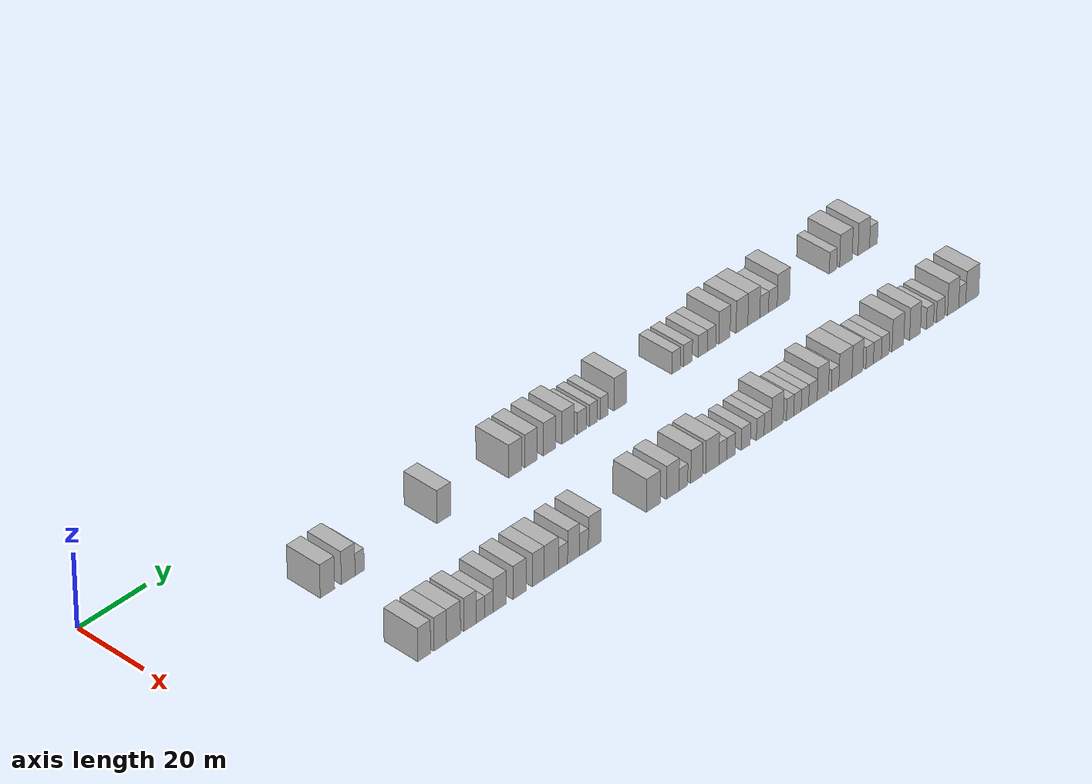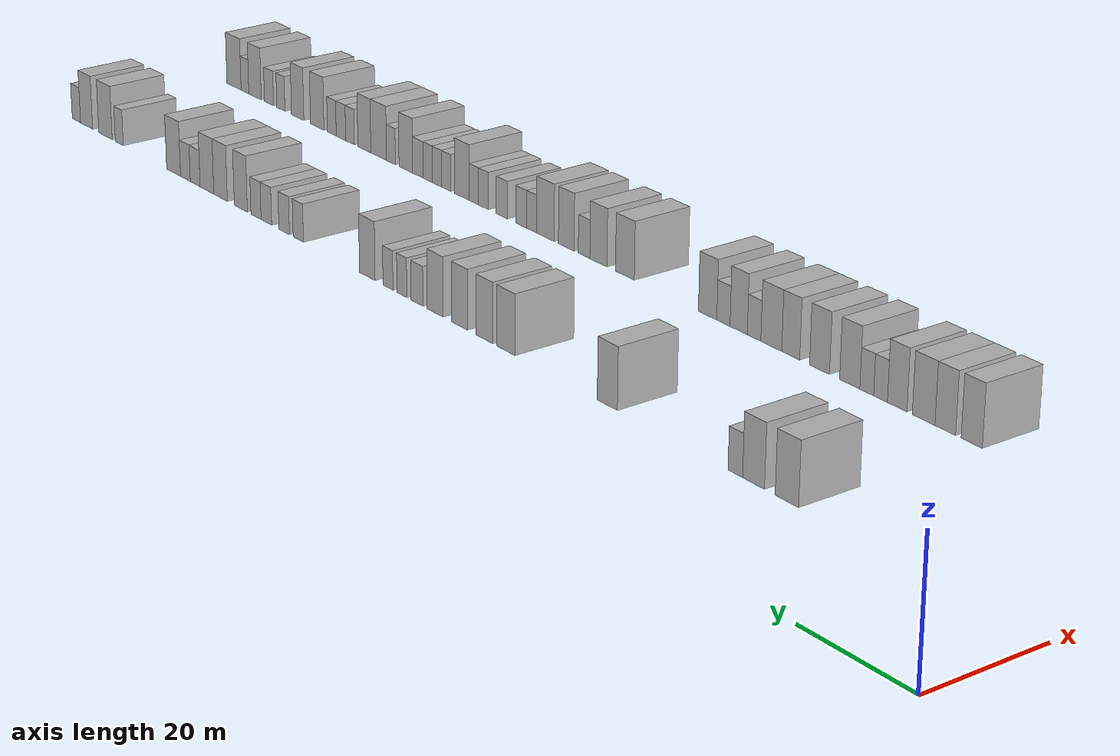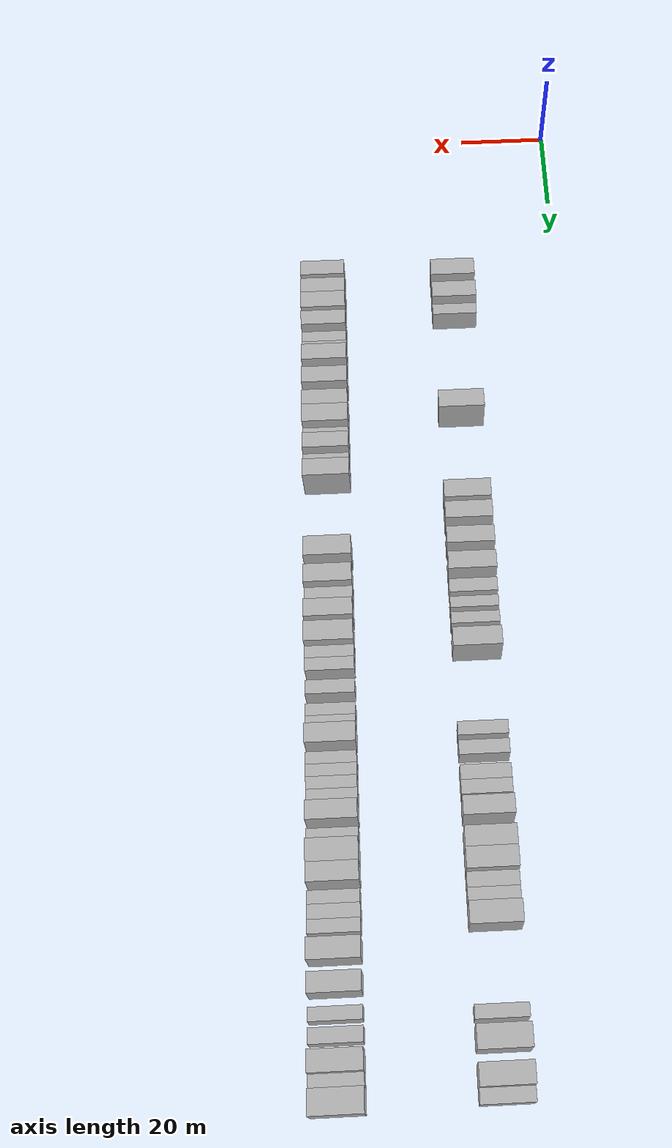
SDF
<sdf version="1.6">
 <world name="default">
  <model name="building_66">
   <static>1</static>
   <pose>25.0000 44.5543 0 0.000000 0.000000 0.000000</pose>
   <link name="link">
    <pose>0 0 4.50 0 0 0</pose>
    <collision name="collision"><geometry><box><size>10.0000 4.3334 9.0000</size></box></geometry></collision>
    <visual name="visual">
     <cast_shadows>0</cast_shadows>
     <geometry><box><size>10.0000 4.3334 9.0000</size></box></geometry>
     <material>
      <script>
       <uri>model://HANNAS_wall/materials/scripts</uri>
       <uri>model://HANNAS_wall/materials/textures</uri>
       <name>vrc/HANNAS_wall</name>
      </script>
     </material>
    </visual>
   </link>
  </model>
  <model name="building_67">
   <static>1</static>
   <pose>25.0000 50.7945 0 0.000000 0.000000 0.000000</pose>
   <link name="link">
    <pose>0 0 4.50 0 0 0</pose>
    <collision name="collision"><geometry><box><size>10.0000 4.1470 9.0000</size></box></geometry></collision>
    <visual name="visual">
     <cast_shadows>0</cast_shadows>
     <geometry><box><size>10.0000 4.1470 9.0000</size></box></geometry>
     <material>
      <script>
       <uri>model://HANNAS_wall/materials/scripts</uri>
       <uri>model://HANNAS_wall/materials/textures</uri>
       <name>vrc/HANNAS_wall</name>
      </script>
     </material>
    </visual>
   </link>
  </model>
  <model name="building_68">
   <static>1</static>
   <pose>25.0000 54.2632 0 0.000000 0.000000 0.000000</pose>
   <link name="link">
    <pose>0 0 3.00 0 0 0</pose>
    <collision name="collision"><geometry><box><size>10.0000 2.7905 6.0000</size></box></geometry></collision>
    <visual name="visual">
     <cast_shadows>0</cast_shadows>
     <geometry><box><size>10.0000 2.7905 6.0000</size></box></geometry>
     <material>
      <script>
       <uri>model://HANNAS_wall/materials/scripts</uri>
       <uri>model://HANNAS_wall/materials/textures</uri>
       <name>vrc/HANNAS_wall</name>
      </script>
     </material>
    </visual>
   </link>
  </model>
  <model name="building_69">
   <static>1</static>
   <pose>25.0000 80.0277 0 0.000000 0.000000 0.000000</pose>
   <link name="link">
    <pose>0 0 4.50 0 0 0</pose>
    <collision name="collision"><geometry><box><size>10.0000 4.2462 9.0000</size></box></geometry></collision>
    <visual name="visual">
     <cast_shadows>0</cast_shadows>
     <geometry><box><size>10.0000 4.2462 9.0000</size></box></geometry>
     <material>
      <script>
       <uri>model://HANNAS_wall/materials/scripts</uri>
       <uri>model://HANNAS_wall/materials/textures</uri>
       <name>vrc/HANNAS_wall</name>
      </script>
     </material>
    </visual>
   </link>
  </model>
  <model name="building_70">
   <static>1</static>
   <pose>25.0000 102.2904 0 0.000000 0.000000 0.000000</pose>
   <link name="link">
    <pose>0 0 4.50 0 0 0</pose>
    <collision name="collision"><geometry><box><size>10.0000 4.0931 9.0000</size></box></geometry></collision>
    <visual name="visual">
     <cast_shadows>0</cast_shadows>
     <geometry><box><size>10.0000 4.0931 9.0000</size></box></geometry>
     <material>
      <script>
       <uri>model://HANNAS_wall/materials/scripts</uri>
       <uri>model://HANNAS_wall/materials/textures</uri>
       <name>vrc/HANNAS_wall</name>
      </script>
     </material>
    </visual>
   </link>
  </model>
  <model name="building_71">
   <static>1</static>
   <pose>25.0000 107.2830 0 0.000000 0.000000 0.000000</pose>
   <link name="link">
    <pose>0 0 4.50 0 0 0</pose>
    <collision name="collision"><geometry><box><size>10.0000 3.8921 9.0000</size></box></geometry></collision>
    <visual name="visual">
     <cast_shadows>0</cast_shadows>
     <geometry><box><size>10.0000 3.8921 9.0000</size></box></geometry>
     <material>
      <script>
       <uri>model://HANNAS_wall/materials/scripts</uri>
       <uri>model://HANNAS_wall/materials/textures</uri>
       <name>vrc/HANNAS_wall</name>
      </script>
     </material>
    </visual>
   </link>
  </model>
  <model name="building_72">
   <static>1</static>
   <pose>25.0000 113.1129 0 0.000000 0.000000 0.000000</pose>
   <link name="link">
    <pose>0 0 4.50 0 0 0</pose>
    <collision name="collision"><geometry><box><size>10.0000 3.7676 9.0000</size></box></geometry></collision>
    <visual name="visual">
     <cast_shadows>0</cast_shadows>
     <geometry><box><size>10.0000 3.7676 9.0000</size></box></geometry>
     <material>
      <script>
       <uri>model://HANNAS_wall/materials/scripts</uri>
       <uri>model://HANNAS_wall/materials/textures</uri>
       <name>vrc/HANNAS_wall</name>
      </script>
     </material>
    </visual>
   </link>
  </model>
  <model name="building_73">
   <static>1</static>
   <pose>25.0000 118.9448 0 0.000000 0.000000 0.000000</pose>
   <link name="link">
    <pose>0 0 4.50 0 0 0</pose>
    <collision name="collision"><geometry><box><size>10.0000 3.8962 9.0000</size></box></geometry></collision>
    <visual name="visual">
     <cast_shadows>0</cast_shadows>
     <geometry><box><size>10.0000 3.8962 9.0000</size></box></geometry>
     <material>
      <script>
       <uri>model://HANNAS_wall/materials/scripts</uri>
       <uri>model://HANNAS_wall/materials/textures</uri>
       <name>vrc/HANNAS_wall</name>
      </script>
     </material>
    </visual>
   </link>
  </model>
  <model name="building_74">
   <static>1</static>
   <pose>25.0000 123.3768 0 0.000000 0.000000 0.000000</pose>
   <link name="link">
    <pose>0 0 3.00 0 0 0</pose>
    <collision name="collision"><geometry><box><size>10.0000 2.9678 6.0000</size></box></geometry></collision>
    <visual name="visual">
     <cast_shadows>0</cast_shadows>
     <geometry><box><size>10.0000 2.9678 6.0000</size></box></geometry>
     <material>
      <script>
       <uri>model://HANNAS_wall/materials/scripts</uri>
       <uri>model://HANNAS_wall/materials/textures</uri>
       <name>vrc/HANNAS_wall</name>
      </script>
     </material>
    </visual>
   </link>
  </model>
  <model name="building_75">
   <static>1</static>
   <pose>25.0000 127.0900 0 0.000000 0.000000 0.000000</pose>
   <link name="link">
    <pose>0 0 3.00 0 0 0</pose>
    <collision name="collision"><geometry><box><size>10.0000 2.4586 6.0000</size></box></geometry></collision>
    <visual name="visual">
     <cast_shadows>0</cast_shadows>
     <geometry><box><size>10.0000 2.4586 6.0000</size></box></geometry>
     <material>
      <script>
       <uri>model://HANNAS_wall/materials/scripts</uri>
       <uri>model://HANNAS_wall/materials/textures</uri>
       <name>vrc/HANNAS_wall</name>
      </script>
     </material>
    </visual>
   </link>
  </model>
  <model name="building_76">
   <static>1</static>
   <pose>25.0000 130.5722 0 0.000000 0.000000 0.000000</pose>
   <link name="link">
    <pose>0 0 3.00 0 0 0</pose>
    <collision name="collision"><geometry><box><size>10.0000 2.5057 6.0000</size></box></geometry></collision>
    <visual name="visual">
     <cast_shadows>0</cast_shadows>
     <geometry><box><size>10.0000 2.5057 6.0000</size></box></geometry>
     <material>
      <script>
       <uri>model://HANNAS_wall/materials/scripts</uri>
       <uri>model://HANNAS_wall/materials/textures</uri>
       <name>vrc/HANNAS_wall</name>
      </script>
     </material>
    </visual>
   </link>
  </model>
  <model name="building_77">
   <static>1</static>
   <pose>25.0000 135.8211 0 0.000000 0.000000 0.000000</pose>
   <link name="link">
    <pose>0 0 4.50 0 0 0</pose>
    <collision name="collision"><geometry><box><size>10.0000 3.9923 9.0000</size></box></geometry></collision>
    <visual name="visual">
     <cast_shadows>0</cast_shadows>
     <geometry><box><size>10.0000 3.9923 9.0000</size></box></geometry>
     <material>
      <script>
       <uri>model://HANNAS_wall/materials/scripts</uri>
       <uri>model://HANNAS_wall/materials/textures</uri>
       <name>vrc/HANNAS_wall</name>
      </script>
     </material>
    </visual>
   </link>
  </model>
  <model name="building_78">
   <static>1</static>
   <pose>25.0000 154.0141 0 0.000000 0.000000 0.000000</pose>
   <link name="link">
    <pose>0 0 3.00 0 0 0</pose>
    <collision name="collision"><geometry><box><size>10.0000 2.7978 6.0000</size></box></geometry></collision>
    <visual name="visual">
     <cast_shadows>0</cast_shadows>
     <geometry><box><size>10.0000 2.7978 6.0000</size></box></geometry>
     <material>
      <script>
       <uri>model://HANNAS_wall/materials/scripts</uri>
       <uri>model://HANNAS_wall/materials/textures</uri>
       <name>vrc/HANNAS_wall</name>
      </script>
     </material>
    </visual>
   </link>
  </model>
  <model name="building_79">
   <static>1</static>
   <pose>25.0000 157.8688 0 0.000000 0.000000 0.000000</pose>
   <link name="link">
    <pose>0 0 3.00 0 0 0</pose>
    <collision name="collision"><geometry><box><size>10.0000 2.9116 6.0000</size></box></geometry></collision>
    <visual name="visual">
     <cast_shadows>0</cast_shadows>
     <geometry><box><size>10.0000 2.9116 6.0000</size></box></geometry>
     <material>
      <script>
       <uri>model://HANNAS_wall/materials/scripts</uri>
       <uri>model://HANNAS_wall/materials/textures</uri>
       <name>vrc/HANNAS_wall</name>
      </script>
     </material>
    </visual>
   </link>
  </model>
  <model name="building_80">
   <static>1</static>
   <pose>25.0000 162.8022 0 0.000000 0.000000 0.000000</pose>
   <link name="link">
    <pose>0 0 3.00 0 0 0</pose>
    <collision name="collision"><geometry><box><size>10.0000 2.9551 6.0000</size></box></geometry></collision>
    <visual name="visual">
     <cast_shadows>0</cast_shadows>
     <geometry><box><size>10.0000 2.9551 6.0000</size></box></geometry>
     <material>
      <script>
       <uri>model://HANNAS_wall/materials/scripts</uri>
       <uri>model://HANNAS_wall/materials/textures</uri>
       <name>vrc/HANNAS_wall</name>
      </script>
     </material>
    </visual>
   </link>
  </model>
  <model name="building_81">
   <static>1</static>
   <pose>25.0000 165.7086 0 0.000000 0.000000 0.000000</pose>
   <link name="link">
    <pose>0 0 3.00 0 0 0</pose>
    <collision name="collision"><geometry><box><size>10.0000 2.8577 6.0000</size></box></geometry></collision>
    <visual name="visual">
     <cast_shadows>0</cast_shadows>
     <geometry><box><size>10.0000 2.8577 6.0000</size></box></geometry>
     <material>
      <script>
       <uri>model://HANNAS_wall/materials/scripts</uri>
       <uri>model://HANNAS_wall/materials/textures</uri>
       <name>vrc/HANNAS_wall</name>
      </script>
     </material>
    </visual>
   </link>
  </model>
  <model name="building_82">
   <static>1</static>
   <pose>25.0000 170.0005 0 0.000000 0.000000 0.000000</pose>
   <link name="link">
    <pose>0 0 4.50 0 0 0</pose>
    <collision name="collision"><geometry><box><size>10.0000 3.7261 9.0000</size></box></geometry></collision>
    <visual name="visual">
     <cast_shadows>0</cast_shadows>
     <geometry><box><size>10.0000 3.7261 9.0000</size></box></geometry>
     <material>
      <script>
       <uri>model://HANNAS_wall/materials/scripts</uri>
       <uri>model://HANNAS_wall/materials/textures</uri>
       <name>vrc/HANNAS_wall</name>
      </script>
     </material>
    </visual>
   </link>
  </model>
  <model name="building_83">
   <static>1</static>
   <pose>25.0000 175.8332 0 0.000000 0.000000 0.000000</pose>
   <link name="link">
    <pose>0 0 4.50 0 0 0</pose>
    <collision name="collision"><geometry><box><size>10.0000 3.9392 9.0000</size></box></geometry></collision>
    <visual name="visual">
     <cast_shadows>0</cast_shadows>
     <geometry><box><size>10.0000 3.9392 9.0000</size></box></geometry>
     <material>
      <script>
       <uri>model://HANNAS_wall/materials/scripts</uri>
       <uri>model://HANNAS_wall/materials/textures</uri>
       <name>vrc/HANNAS_wall</name>
      </script>
     </material>
    </visual>
   </link>
  </model>
  <model name="building_84">
   <static>1</static>
   <pose>25.0000 179.8271 0 0.000000 0.000000 0.000000</pose>
   <link name="link">
    <pose>0 0 4.50 0 0 0</pose>
    <collision name="collision"><geometry><box><size>10.0000 4.0485 9.0000</size></box></geometry></collision>
    <visual name="visual">
     <cast_shadows>0</cast_shadows>
     <geometry><box><size>10.0000 4.0485 9.0000</size></box></geometry>
     <material>
      <script>
       <uri>model://HANNAS_wall/materials/scripts</uri>
       <uri>model://HANNAS_wall/materials/textures</uri>
       <name>vrc/HANNAS_wall</name>
      </script>
     </material>
    </visual>
   </link>
  </model>
  <model name="building_85">
   <static>1</static>
   <pose>25.0000 183.3029 0 0.000000 0.000000 0.000000</pose>
   <link name="link">
    <pose>0 0 3.00 0 0 0</pose>
    <collision name="collision"><geometry><box><size>10.0000 2.9031 6.0000</size></box></geometry></collision>
    <visual name="visual">
     <cast_shadows>0</cast_shadows>
     <geometry><box><size>10.0000 2.9031 6.0000</size></box></geometry>
     <material>
      <script>
       <uri>model://HANNAS_wall/materials/scripts</uri>
       <uri>model://HANNAS_wall/materials/textures</uri>
       <name>vrc/HANNAS_wall</name>
      </script>
     </material>
    </visual>
   </link>
  </model>
  <model name="building_86">
   <static>1</static>
   <pose>25.0000 186.2174 0 0.000000 0.000000 0.000000</pose>
   <link name="link">
    <pose>0 0 3.00 0 0 0</pose>
    <collision name="collision"><geometry><box><size>10.0000 2.9258 6.0000</size></box></geometry></collision>
    <visual name="visual">
     <cast_shadows>0</cast_shadows>
     <geometry><box><size>10.0000 2.9258 6.0000</size></box></geometry>
     <material>
      <script>
       <uri>model://HANNAS_wall/materials/scripts</uri>
       <uri>model://HANNAS_wall/materials/textures</uri>
       <name>vrc/HANNAS_wall</name>
      </script>
     </material>
    </visual>
   </link>
  </model>
  <model name="building_87">
   <static>1</static>
   <pose>25.0000 189.7838 0 0.000000 0.000000 0.000000</pose>
   <link name="link">
    <pose>0 0 4.50 0 0 0</pose>
    <collision name="collision"><geometry><box><size>10.0000 4.2070 9.0000</size></box></geometry></collision>
    <visual name="visual">
     <cast_shadows>0</cast_shadows>
     <geometry><box><size>10.0000 4.2070 9.0000</size></box></geometry>
     <material>
      <script>
       <uri>model://HANNAS_wall/materials/scripts</uri>
       <uri>model://HANNAS_wall/materials/textures</uri>
       <name>vrc/HANNAS_wall</name>
      </script>
     </material>
    </visual>
   </link>
  </model>
  <model name="building_88">
   <static>1</static>
   <pose>25.0000 206.6838 0 0.000000 0.000000 0.000000</pose>
   <link name="link">
    <pose>0 0 3.00 0 0 0</pose>
    <collision name="collision"><geometry><box><size>10.0000 2.5310 6.0000</size></box></geometry></collision>
    <visual name="visual">
     <cast_shadows>0</cast_shadows>
     <geometry><box><size>10.0000 2.5310 6.0000</size></box></geometry>
     <material>
      <script>
       <uri>model://HANNAS_wall/materials/scripts</uri>
       <uri>model://HANNAS_wall/materials/textures</uri>
       <name>vrc/HANNAS_wall</name>
      </script>
     </material>
    </visual>
   </link>
  </model>
  <model name="building_89">
   <static>1</static>
   <pose>25.0000 211.1106 0 0.000000 0.000000 0.000000</pose>
   <link name="link">
    <pose>0 0 4.50 0 0 0</pose>
    <collision name="collision"><geometry><box><size>10.0000 4.3227 9.0000</size></box></geometry></collision>
    <visual name="visual">
     <cast_shadows>0</cast_shadows>
     <geometry><box><size>10.0000 4.3227 9.0000</size></box></geometry>
     <material>
      <script>
       <uri>model://HANNAS_wall/materials/scripts</uri>
       <uri>model://HANNAS_wall/materials/textures</uri>
       <name>vrc/HANNAS_wall</name>
      </script>
     </material>
    </visual>
   </link>
  </model>
  <model name="building_90">
   <static>1</static>
   <pose>25.0000 217.2692 0 0.000000 0.000000 0.000000</pose>
   <link name="link">
    <pose>0 0 4.50 0 0 0</pose>
    <collision name="collision"><geometry><box><size>10.0000 3.9945 9.0000</size></box></geometry></collision>
    <visual name="visual">
     <cast_shadows>0</cast_shadows>
     <geometry><box><size>10.0000 3.9945 9.0000</size></box></geometry>
     <material>
      <script>
       <uri>model://HANNAS_wall/materials/scripts</uri>
       <uri>model://HANNAS_wall/materials/textures</uri>
       <name>vrc/HANNAS_wall</name>
      </script>
     </material>
    </visual>
   </link>
  </model>
  <model name="building_91">
   <static>1</static>
   <pose>25.0000 220.6324 0 0.000000 0.000000 0.000000</pose>
   <link name="link">
    <pose>0 0 3.00 0 0 0</pose>
    <collision name="collision"><geometry><box><size>10.0000 2.7318 6.0000</size></box></geometry></collision>
    <visual name="visual">
     <cast_shadows>0</cast_shadows>
     <geometry><box><size>10.0000 2.7318 6.0000</size></box></geometry>
     <material>
      <script>
       <uri>model://HANNAS_wall/materials/scripts</uri>
       <uri>model://HANNAS_wall/materials/textures</uri>
       <name>vrc/HANNAS_wall</name>
      </script>
     </material>
    </visual>
   </link>
  </model>
  <model name="building_163">
   <static>1</static>
   <pose>55.0000 43.4551 0 0.000000 0.000000 0.000000</pose>
   <link name="link">
    <pose>0 0 4.50 0 0 0</pose>
    <collision name="collision"><geometry><box><size>10.0000 3.8297 9.0000</size></box></geometry></collision>
    <visual name="visual">
     <cast_shadows>0</cast_shadows>
     <geometry><box><size>10.0000 3.8297 9.0000</size></box></geometry>
     <material>
      <script>
       <uri>model://HANNAS_wall/materials/scripts</uri>
       <uri>model://HANNAS_wall/materials/textures</uri>
       <name>vrc/HANNAS_wall</name>
      </script>
     </material>
    </visual>
   </link>
  </model>
  <model name="building_164">
   <static>1</static>
   <pose>55.0000 48.2676 0 0.000000 0.000000 0.000000</pose>
   <link name="link">
    <pose>0 0 4.50 0 0 0</pose>
    <collision name="collision"><geometry><box><size>10.0000 3.7953 9.0000</size></box></geometry></collision>
    <visual name="visual">
     <cast_shadows>0</cast_shadows>
     <geometry><box><size>10.0000 3.7953 9.0000</size></box></geometry>
     <material>
      <script>
       <uri>model://HANNAS_wall/materials/scripts</uri>
       <uri>model://HANNAS_wall/materials/textures</uri>
       <name>vrc/HANNAS_wall</name>
      </script>
     </material>
    </visual>
   </link>
  </model>
  <model name="building_165">
   <static>1</static>
   <pose>55.0000 52.2779 0 0.000000 0.000000 0.000000</pose>
   <link name="link">
    <pose>0 0 4.50 0 0 0</pose>
    <collision name="collision"><geometry><box><size>10.0000 4.2254 9.0000</size></box></geometry></collision>
    <visual name="visual">
     <cast_shadows>0</cast_shadows>
     <geometry><box><size>10.0000 4.2254 9.0000</size></box></geometry>
     <material>
      <script>
       <uri>model://HANNAS_wall/materials/scripts</uri>
       <uri>model://HANNAS_wall/materials/textures</uri>
       <name>vrc/HANNAS_wall</name>
      </script>
     </material>
    </visual>
   </link>
  </model>
  <model name="building_166">
   <static>1</static>
   <pose>55.0000 57.2483 0 0.000000 0.000000 0.000000</pose>
   <link name="link">
    <pose>0 0 4.50 0 0 0</pose>
    <collision name="collision"><geometry><box><size>10.0000 3.7154 9.0000</size></box></geometry></collision>
    <visual name="visual">
     <cast_shadows>0</cast_shadows>
     <geometry><box><size>10.0000 3.7154 9.0000</size></box></geometry>
     <material>
      <script>
       <uri>model://HANNAS_wall/materials/scripts</uri>
       <uri>model://HANNAS_wall/materials/textures</uri>
       <name>vrc/HANNAS_wall</name>
      </script>
     </material>
    </visual>
   </link>
  </model>
  <model name="building_167">
   <static>1</static>
   <pose>55.0000 60.4273 0 0.000000 0.000000 0.000000</pose>
   <link name="link">
    <pose>0 0 3.00 0 0 0</pose>
    <collision name="collision"><geometry><box><size>10.0000 2.6425 6.0000</size></box></geometry></collision>
    <visual name="visual">
     <cast_shadows>0</cast_shadows>
     <geometry><box><size>10.0000 2.6425 6.0000</size></box></geometry>
     <material>
      <script>
       <uri>model://HANNAS_wall/materials/scripts</uri>
       <uri>model://HANNAS_wall/materials/textures</uri>
       <name>vrc/HANNAS_wall</name>
      </script>
     </material>
    </visual>
   </link>
  </model>
  <model name="building_168">
   <static>1</static>
   <pose>55.0000 63.0873 0 0.000000 0.000000 0.000000</pose>
   <link name="link">
    <pose>0 0 3.00 0 0 0</pose>
    <collision name="collision"><geometry><box><size>10.0000 2.6775 6.0000</size></box></geometry></collision>
    <visual name="visual">
     <cast_shadows>0</cast_shadows>
     <geometry><box><size>10.0000 2.6775 6.0000</size></box></geometry>
     <material>
      <script>
       <uri>model://HANNAS_wall/materials/scripts</uri>
       <uri>model://HANNAS_wall/materials/textures</uri>
       <name>vrc/HANNAS_wall</name>
      </script>
     </material>
    </visual>
   </link>
  </model>
  <model name="building_169">
   <static>1</static>
   <pose>55.0000 66.4097 0 0.000000 0.000000 0.000000</pose>
   <link name="link">
    <pose>0 0 4.50 0 0 0</pose>
    <collision name="collision"><geometry><box><size>10.0000 3.9674 9.0000</size></box></geometry></collision>
    <visual name="visual">
     <cast_shadows>0</cast_shadows>
     <geometry><box><size>10.0000 3.9674 9.0000</size></box></geometry>
     <material>
      <script>
       <uri>model://HANNAS_wall/materials/scripts</uri>
       <uri>model://HANNAS_wall/materials/textures</uri>
       <name>vrc/HANNAS_wall</name>
      </script>
     </material>
    </visual>
   </link>
  </model>
  <model name="building_170">
   <static>1</static>
   <pose>55.0000 72.3916 0 0.000000 0.000000 0.000000</pose>
   <link name="link">
    <pose>0 0 4.50 0 0 0</pose>
    <collision name="collision"><geometry><box><size>10.0000 3.9963 9.0000</size></box></geometry></collision>
    <visual name="visual">
     <cast_shadows>0</cast_shadows>
     <geometry><box><size>10.0000 3.9963 9.0000</size></box></geometry>
     <material>
      <script>
       <uri>model://HANNAS_wall/materials/scripts</uri>
       <uri>model://HANNAS_wall/materials/textures</uri>
       <name>vrc/HANNAS_wall</name>
      </script>
     </material>
    </visual>
   </link>
  </model>
  <model name="building_171">
   <static>1</static>
   <pose>55.0000 78.2296 0 0.000000 0.000000 0.000000</pose>
   <link name="link">
    <pose>0 0 4.50 0 0 0</pose>
    <collision name="collision"><geometry><box><size>10.0000 3.6797 9.0000</size></box></geometry></collision>
    <visual name="visual">
     <cast_shadows>0</cast_shadows>
     <geometry><box><size>10.0000 3.6797 9.0000</size></box></geometry>
     <material>
      <script>
       <uri>model://HANNAS_wall/materials/scripts</uri>
       <uri>model://HANNAS_wall/materials/textures</uri>
       <name>vrc/HANNAS_wall</name>
      </script>
     </material>
    </visual>
   </link>
  </model>
  <model name="building_172">
   <static>1</static>
   <pose>55.0000 82.2368 0 0.000000 0.000000 0.000000</pose>
   <link name="link">
    <pose>0 0 4.50 0 0 0</pose>
    <collision name="collision"><geometry><box><size>10.0000 4.3348 9.0000</size></box></geometry></collision>
    <visual name="visual">
     <cast_shadows>0</cast_shadows>
     <geometry><box><size>10.0000 4.3348 9.0000</size></box></geometry>
     <material>
      <script>
       <uri>model://HANNAS_wall/materials/scripts</uri>
       <uri>model://HANNAS_wall/materials/textures</uri>
       <name>vrc/HANNAS_wall</name>
      </script>
     </material>
    </visual>
   </link>
  </model>
  <model name="building_173">
   <static>1</static>
   <pose>55.0000 85.8273 0 0.000000 0.000000 0.000000</pose>
   <link name="link">
    <pose>0 0 3.00 0 0 0</pose>
    <collision name="collision"><geometry><box><size>10.0000 2.8461 6.0000</size></box></geometry></collision>
    <visual name="visual">
     <cast_shadows>0</cast_shadows>
     <geometry><box><size>10.0000 2.8461 6.0000</size></box></geometry>
     <material>
      <script>
       <uri>model://HANNAS_wall/materials/scripts</uri>
       <uri>model://HANNAS_wall/materials/textures</uri>
       <name>vrc/HANNAS_wall</name>
      </script>
     </material>
    </visual>
   </link>
  </model>
  <model name="building_174">
   <static>1</static>
   <pose>55.0000 89.0780 0 0.000000 0.000000 0.000000</pose>
   <link name="link">
    <pose>0 0 4.50 0 0 0</pose>
    <collision name="collision"><geometry><box><size>10.0000 3.6553 9.0000</size></box></geometry></collision>
    <visual name="visual">
     <cast_shadows>0</cast_shadows>
     <geometry><box><size>10.0000 3.6553 9.0000</size></box></geometry>
     <material>
      <script>
       <uri>model://HANNAS_wall/materials/scripts</uri>
       <uri>model://HANNAS_wall/materials/textures</uri>
       <name>vrc/HANNAS_wall</name>
      </script>
     </material>
    </visual>
   </link>
  </model>
  <model name="building_175">
   <static>1</static>
   <pose>55.0000 92.3226 0 0.000000 0.000000 0.000000</pose>
   <link name="link">
    <pose>0 0 3.00 0 0 0</pose>
    <collision name="collision"><geometry><box><size>10.0000 2.8340 6.0000</size></box></geometry></collision>
    <visual name="visual">
     <cast_shadows>0</cast_shadows>
     <geometry><box><size>10.0000 2.8340 6.0000</size></box></geometry>
     <material>
      <script>
       <uri>model://HANNAS_wall/materials/scripts</uri>
       <uri>model://HANNAS_wall/materials/textures</uri>
       <name>vrc/HANNAS_wall</name>
      </script>
     </material>
    </visual>
   </link>
  </model>
  <model name="building_176">
   <static>1</static>
   <pose>55.0000 95.7386 0 0.000000 0.000000 0.000000</pose>
   <link name="link">
    <pose>0 0 4.50 0 0 0</pose>
    <collision name="collision"><geometry><box><size>10.0000 3.9980 9.0000</size></box></geometry></collision>
    <visual name="visual">
     <cast_shadows>0</cast_shadows>
     <geometry><box><size>10.0000 3.9980 9.0000</size></box></geometry>
     <material>
      <script>
       <uri>model://HANNAS_wall/materials/scripts</uri>
       <uri>model://HANNAS_wall/materials/textures</uri>
       <name>vrc/HANNAS_wall</name>
      </script>
     </material>
    </visual>
   </link>
  </model>
  <model name="building_177">
   <static>1</static>
   <pose>55.0000 114.2738 0 0.000000 0.000000 0.000000</pose>
   <link name="link">
    <pose>0 0 4.50 0 0 0</pose>
    <collision name="collision"><geometry><box><size>10.0000 4.3575 9.0000</size></box></geometry></collision>
    <visual name="visual">
     <cast_shadows>0</cast_shadows>
     <geometry><box><size>10.0000 4.3575 9.0000</size></box></geometry>
     <material>
      <script>
       <uri>model://HANNAS_wall/materials/scripts</uri>
       <uri>model://HANNAS_wall/materials/textures</uri>
       <name>vrc/HANNAS_wall</name>
      </script>
     </material>
    </visual>
   </link>
  </model>
  <model name="building_178">
   <static>1</static>
   <pose>55.0000 120.4576 0 0.000000 0.000000 0.000000</pose>
   <link name="link">
    <pose>0 0 4.50 0 0 0</pose>
    <collision name="collision"><geometry><box><size>10.0000 4.0099 9.0000</size></box></geometry></collision>
    <visual name="visual">
     <cast_shadows>0</cast_shadows>
     <geometry><box><size>10.0000 4.0099 9.0000</size></box></geometry>
     <material>
      <script>
       <uri>model://HANNAS_wall/materials/scripts</uri>
       <uri>model://HANNAS_wall/materials/textures</uri>
       <name>vrc/HANNAS_wall</name>
      </script>
     </material>
    </visual>
   </link>
  </model>
  <model name="building_179">
   <static>1</static>
   <pose>55.0000 123.8497 0 0.000000 0.000000 0.000000</pose>
   <link name="link">
    <pose>0 0 3.00 0 0 0</pose>
    <collision name="collision"><geometry><box><size>10.0000 2.7743 6.0000</size></box></geometry></collision>
    <visual name="visual">
     <cast_shadows>0</cast_shadows>
     <geometry><box><size>10.0000 2.7743 6.0000</size></box></geometry>
     <material>
      <script>
       <uri>model://HANNAS_wall/materials/scripts</uri>
       <uri>model://HANNAS_wall/materials/textures</uri>
       <name>vrc/HANNAS_wall</name>
      </script>
     </material>
    </visual>
   </link>
  </model>
  <model name="building_180">
   <static>1</static>
   <pose>55.0000 128.1355 0 0.000000 0.000000 0.000000</pose>
   <link name="link">
    <pose>0 0 4.50 0 0 0</pose>
    <collision name="collision"><geometry><box><size>10.0000 3.7974 9.0000</size></box></geometry></collision>
    <visual name="visual">
     <cast_shadows>0</cast_shadows>
     <geometry><box><size>10.0000 3.7974 9.0000</size></box></geometry>
     <material>
      <script>
       <uri>model://HANNAS_wall/materials/scripts</uri>
       <uri>model://HANNAS_wall/materials/textures</uri>
       <name>vrc/HANNAS_wall</name>
      </script>
     </material>
    </visual>
   </link>
  </model>
  <model name="building_181">
   <static>1</static>
   <pose>55.0000 133.1922 0 0.000000 0.000000 0.000000</pose>
   <link name="link">
    <pose>0 0 4.50 0 0 0</pose>
    <collision name="collision"><geometry><box><size>10.0000 4.3160 9.0000</size></box></geometry></collision>
    <visual name="visual">
     <cast_shadows>0</cast_shadows>
     <geometry><box><size>10.0000 4.3160 9.0000</size></box></geometry>
     <material>
      <script>
       <uri>model://HANNAS_wall/materials/scripts</uri>
       <uri>model://HANNAS_wall/materials/textures</uri>
       <name>vrc/HANNAS_wall</name>
      </script>
     </material>
    </visual>
   </link>
  </model>
  <model name="building_182">
   <static>1</static>
   <pose>55.0000 136.6220 0 0.000000 0.000000 0.000000</pose>
   <link name="link">
    <pose>0 0 3.00 0 0 0</pose>
    <collision name="collision"><geometry><box><size>10.0000 2.5436 6.0000</size></box></geometry></collision>
    <visual name="visual">
     <cast_shadows>0</cast_shadows>
     <geometry><box><size>10.0000 2.5436 6.0000</size></box></geometry>
     <material>
      <script>
       <uri>model://HANNAS_wall/materials/scripts</uri>
       <uri>model://HANNAS_wall/materials/textures</uri>
       <name>vrc/HANNAS_wall</name>
      </script>
     </material>
    </visual>
   </link>
  </model>
  <model name="building_183">
   <static>1</static>
   <pose>55.0000 139.2633 0 0.000000 0.000000 0.000000</pose>
   <link name="link">
    <pose>0 0 3.00 0 0 0</pose>
    <collision name="collision"><geometry><box><size>10.0000 2.7390 6.0000</size></box></geometry></collision>
    <visual name="visual">
     <cast_shadows>0</cast_shadows>
     <geometry><box><size>10.0000 2.7390 6.0000</size></box></geometry>
     <material>
      <script>
       <uri>model://HANNAS_wall/materials/scripts</uri>
       <uri>model://HANNAS_wall/materials/textures</uri>
       <name>vrc/HANNAS_wall</name>
      </script>
     </material>
    </visual>
   </link>
  </model>
  <model name="building_184">
   <static>1</static>
   <pose>55.0000 144.0855 0 0.000000 0.000000 0.000000</pose>
   <link name="link">
    <pose>0 0 3.00 0 0 0</pose>
    <collision name="collision"><geometry><box><size>10.0000 2.9054 6.0000</size></box></geometry></collision>
    <visual name="visual">
     <cast_shadows>0</cast_shadows>
     <geometry><box><size>10.0000 2.9054 6.0000</size></box></geometry>
     <material>
      <script>
       <uri>model://HANNAS_wall/materials/scripts</uri>
       <uri>model://HANNAS_wall/materials/textures</uri>
       <name>vrc/HANNAS_wall</name>
      </script>
     </material>
    </visual>
   </link>
  </model>
  <model name="building_185">
   <static>1</static>
   <pose>55.0000 148.7936 0 0.000000 0.000000 0.000000</pose>
   <link name="link">
    <pose>0 0 3.00 0 0 0</pose>
    <collision name="collision"><geometry><box><size>10.0000 2.5108 6.0000</size></box></geometry></collision>
    <visual name="visual">
     <cast_shadows>0</cast_shadows>
     <geometry><box><size>10.0000 2.5108 6.0000</size></box></geometry>
     <material>
      <script>
       <uri>model://HANNAS_wall/materials/scripts</uri>
       <uri>model://HANNAS_wall/materials/textures</uri>
       <name>vrc/HANNAS_wall</name>
      </script>
     </material>
    </visual>
   </link>
  </model>
  <model name="building_186">
   <static>1</static>
   <pose>55.0000 151.2506 0 0.000000 0.000000 0.000000</pose>
   <link name="link">
    <pose>0 0 3.00 0 0 0</pose>
    <collision name="collision"><geometry><box><size>10.0000 2.4031 6.0000</size></box></geometry></collision>
    <visual name="visual">
     <cast_shadows>0</cast_shadows>
     <geometry><box><size>10.0000 2.4031 6.0000</size></box></geometry>
     <material>
      <script>
       <uri>model://HANNAS_wall/materials/scripts</uri>
       <uri>model://HANNAS_wall/materials/textures</uri>
       <name>vrc/HANNAS_wall</name>
      </script>
     </material>
    </visual>
   </link>
  </model>
  <model name="building_187">
   <static>1</static>
   <pose>55.0000 154.4166 0 0.000000 0.000000 0.000000</pose>
   <link name="link">
    <pose>0 0 4.50 0 0 0</pose>
    <collision name="collision"><geometry><box><size>10.0000 3.9289 9.0000</size></box></geometry></collision>
    <visual name="visual">
     <cast_shadows>0</cast_shadows>
     <geometry><box><size>10.0000 3.9289 9.0000</size></box></geometry>
     <material>
      <script>
       <uri>model://HANNAS_wall/materials/scripts</uri>
       <uri>model://HANNAS_wall/materials/textures</uri>
       <name>vrc/HANNAS_wall</name>
      </script>
     </material>
    </visual>
   </link>
  </model>
  <model name="building_188">
   <static>1</static>
   <pose>55.0000 158.6094 0 0.000000 0.000000 0.000000</pose>
   <link name="link">
    <pose>0 0 3.00 0 0 0</pose>
    <collision name="collision"><geometry><box><size>10.0000 2.4568 6.0000</size></box></geometry></collision>
    <visual name="visual">
     <cast_shadows>0</cast_shadows>
     <geometry><box><size>10.0000 2.4568 6.0000</size></box></geometry>
     <material>
      <script>
       <uri>model://HANNAS_wall/materials/scripts</uri>
       <uri>model://HANNAS_wall/materials/textures</uri>
       <name>vrc/HANNAS_wall</name>
      </script>
     </material>
    </visual>
   </link>
  </model>
  <model name="building_189">
   <static>1</static>
   <pose>55.0000 161.0652 0 0.000000 0.000000 0.000000</pose>
   <link name="link">
    <pose>0 0 3.00 0 0 0</pose>
    <collision name="collision"><geometry><box><size>10.0000 2.4547 6.0000</size></box></geometry></collision>
    <visual name="visual">
     <cast_shadows>0</cast_shadows>
     <geometry><box><size>10.0000 2.4547 6.0000</size></box></geometry>
     <material>
      <script>
       <uri>model://HANNAS_wall/materials/scripts</uri>
       <uri>model://HANNAS_wall/materials/textures</uri>
       <name>vrc/HANNAS_wall</name>
      </script>
     </material>
    </visual>
   </link>
  </model>
  <model name="building_190">
   <static>1</static>
   <pose>55.0000 163.5374 0 0.000000 0.000000 0.000000</pose>
   <link name="link">
    <pose>0 0 3.00 0 0 0</pose>
    <collision name="collision"><geometry><box><size>10.0000 2.4897 6.0000</size></box></geometry></collision>
    <visual name="visual">
     <cast_shadows>0</cast_shadows>
     <geometry><box><size>10.0000 2.4897 6.0000</size></box></geometry>
     <material>
      <script>
       <uri>model://HANNAS_wall/materials/scripts</uri>
       <uri>model://HANNAS_wall/materials/textures</uri>
       <name>vrc/HANNAS_wall</name>
      </script>
     </material>
    </visual>
   </link>
  </model>
  <model name="building_191">
   <static>1</static>
   <pose>55.0000 166.1997 0 0.000000 0.000000 0.000000</pose>
   <link name="link">
    <pose>0 0 3.00 0 0 0</pose>
    <collision name="collision"><geometry><box><size>10.0000 2.8349 6.0000</size></box></geometry></collision>
    <visual name="visual">
     <cast_shadows>0</cast_shadows>
     <geometry><box><size>10.0000 2.8349 6.0000</size></box></geometry>
     <material>
      <script>
       <uri>model://HANNAS_wall/materials/scripts</uri>
       <uri>model://HANNAS_wall/materials/textures</uri>
       <name>vrc/HANNAS_wall</name>
      </script>
     </material>
    </visual>
   </link>
  </model>
  <model name="building_192">
   <static>1</static>
   <pose>55.0000 169.4863 0 0.000000 0.000000 0.000000</pose>
   <link name="link">
    <pose>0 0 4.50 0 0 0</pose>
    <collision name="collision"><geometry><box><size>10.0000 3.7383 9.0000</size></box></geometry></collision>
    <visual name="visual">
     <cast_shadows>0</cast_shadows>
     <geometry><box><size>10.0000 3.7383 9.0000</size></box></geometry>
     <material>
      <script>
       <uri>model://HANNAS_wall/materials/scripts</uri>
       <uri>model://HANNAS_wall/materials/textures</uri>
       <name>vrc/HANNAS_wall</name>
      </script>
     </material>
    </visual>
   </link>
  </model>
  <model name="building_193">
   <static>1</static>
   <pose>55.0000 173.5951 0 0.000000 0.000000 0.000000</pose>
   <link name="link">
    <pose>0 0 3.00 0 0 0</pose>
    <collision name="collision"><geometry><box><size>10.0000 2.4793 6.0000</size></box></geometry></collision>
    <visual name="visual">
     <cast_shadows>0</cast_shadows>
     <geometry><box><size>10.0000 2.4793 6.0000</size></box></geometry>
     <material>
      <script>
       <uri>model://HANNAS_wall/materials/scripts</uri>
       <uri>model://HANNAS_wall/materials/textures</uri>
       <name>vrc/HANNAS_wall</name>
      </script>
     </material>
    </visual>
   </link>
  </model>
  <model name="building_194">
   <static>1</static>
   <pose>55.0000 177.0325 0 0.000000 0.000000 0.000000</pose>
   <link name="link">
    <pose>0 0 4.50 0 0 0</pose>
    <collision name="collision"><geometry><box><size>10.0000 4.3954 9.0000</size></box></geometry></collision>
    <visual name="visual">
     <cast_shadows>0</cast_shadows>
     <geometry><box><size>10.0000 4.3954 9.0000</size></box></geometry>
     <material>
      <script>
       <uri>model://HANNAS_wall/materials/scripts</uri>
       <uri>model://HANNAS_wall/materials/textures</uri>
       <name>vrc/HANNAS_wall</name>
      </script>
     </material>
    </visual>
   </link>
  </model>
  <model name="building_195">
   <static>1</static>
   <pose>55.0000 181.0784 0 0.000000 0.000000 0.000000</pose>
   <link name="link">
    <pose>0 0 4.50 0 0 0</pose>
    <collision name="collision"><geometry><box><size>10.0000 3.6964 9.0000</size></box></geometry></collision>
    <visual name="visual">
     <cast_shadows>0</cast_shadows>
     <geometry><box><size>10.0000 3.6964 9.0000</size></box></geometry>
     <material>
      <script>
       <uri>model://HANNAS_wall/materials/scripts</uri>
       <uri>model://HANNAS_wall/materials/textures</uri>
       <name>vrc/HANNAS_wall</name>
      </script>
     </material>
    </visual>
   </link>
  </model>
  <model name="building_196">
   <static>1</static>
   <pose>55.0000 185.1822 0 0.000000 0.000000 0.000000</pose>
   <link name="link">
    <pose>0 0 3.00 0 0 0</pose>
    <collision name="collision"><geometry><box><size>10.0000 2.5112 6.0000</size></box></geometry></collision>
    <visual name="visual">
     <cast_shadows>0</cast_shadows>
     <geometry><box><size>10.0000 2.5112 6.0000</size></box></geometry>
     <material>
      <script>
       <uri>model://HANNAS_wall/materials/scripts</uri>
       <uri>model://HANNAS_wall/materials/textures</uri>
       <name>vrc/HANNAS_wall</name>
      </script>
     </material>
    </visual>
   </link>
  </model>
  <model name="building_197">
   <static>1</static>
   <pose>55.0000 187.8022 0 0.000000 0.000000 0.000000</pose>
   <link name="link">
    <pose>0 0 3.00 0 0 0</pose>
    <collision name="collision"><geometry><box><size>10.0000 2.7289 6.0000</size></box></geometry></collision>
    <visual name="visual">
     <cast_shadows>0</cast_shadows>
     <geometry><box><size>10.0000 2.7289 6.0000</size></box></geometry>
     <material>
      <script>
       <uri>model://HANNAS_wall/materials/scripts</uri>
       <uri>model://HANNAS_wall/materials/textures</uri>
       <name>vrc/HANNAS_wall</name>
      </script>
     </material>
    </visual>
   </link>
  </model>
  <model name="building_198">
   <static>1</static>
   <pose>55.0000 190.4635 0 0.000000 0.000000 0.000000</pose>
   <link name="link">
    <pose>0 0 3.00 0 0 0</pose>
    <collision name="collision"><geometry><box><size>10.0000 2.5937 6.0000</size></box></geometry></collision>
    <visual name="visual">
     <cast_shadows>0</cast_shadows>
     <geometry><box><size>10.0000 2.5937 6.0000</size></box></geometry>
     <material>
      <script>
       <uri>model://HANNAS_wall/materials/scripts</uri>
       <uri>model://HANNAS_wall/materials/textures</uri>
       <name>vrc/HANNAS_wall</name>
      </script>
     </material>
    </visual>
   </link>
  </model>
  <model name="building_199">
   <static>1</static>
   <pose>55.0000 194.7491 0 0.000000 0.000000 0.000000</pose>
   <link name="link">
    <pose>0 0 4.50 0 0 0</pose>
    <collision name="collision"><geometry><box><size>10.0000 3.9776 9.0000</size></box></geometry></collision>
    <visual name="visual">
     <cast_shadows>0</cast_shadows>
     <geometry><box><size>10.0000 3.9776 9.0000</size></box></geometry>
     <material>
      <script>
       <uri>model://HANNAS_wall/materials/scripts</uri>
       <uri>model://HANNAS_wall/materials/textures</uri>
       <name>vrc/HANNAS_wall</name>
      </script>
     </material>
    </visual>
   </link>
  </model>
  <model name="building_200">
   <static>1</static>
   <pose>55.0000 200.5973 0 0.000000 0.000000 0.000000</pose>
   <link name="link">
    <pose>0 0 4.50 0 0 0</pose>
    <collision name="collision"><geometry><box><size>10.0000 3.7188 9.0000</size></box></geometry></collision>
    <visual name="visual">
     <cast_shadows>0</cast_shadows>
     <geometry><box><size>10.0000 3.7188 9.0000</size></box></geometry>
     <material>
      <script>
       <uri>model://HANNAS_wall/materials/scripts</uri>
       <uri>model://HANNAS_wall/materials/textures</uri>
       <name>vrc/HANNAS_wall</name>
      </script>
     </material>
    </visual>
   </link>
  </model>
  <model name="building_201">
   <static>1</static>
   <pose>55.0000 205.6950 0 0.000000 0.000000 0.000000</pose>
   <link name="link">
    <pose>0 0 3.00 0 0 0</pose>
    <collision name="collision"><geometry><box><size>10.0000 2.4766 6.0000</size></box></geometry></collision>
    <visual name="visual">
     <cast_shadows>0</cast_shadows>
     <geometry><box><size>10.0000 2.4766 6.0000</size></box></geometry>
     <material>
      <script>
       <uri>model://HANNAS_wall/materials/scripts</uri>
       <uri>model://HANNAS_wall/materials/textures</uri>
       <name>vrc/HANNAS_wall</name>
      </script>
     </material>
    </visual>
   </link>
  </model>
  <model name="building_202">
   <static>1</static>
   <pose>55.0000 209.3369 0 0.000000 0.000000 0.000000</pose>
   <link name="link">
    <pose>0 0 3.00 0 0 0</pose>
    <collision name="collision"><geometry><box><size>10.0000 2.8072 6.0000</size></box></geometry></collision>
    <visual name="visual">
     <cast_shadows>0</cast_shadows>
     <geometry><box><size>10.0000 2.8072 6.0000</size></box></geometry>
     <material>
      <script>
       <uri>model://HANNAS_wall/materials/scripts</uri>
       <uri>model://HANNAS_wall/materials/textures</uri>
       <name>vrc/HANNAS_wall</name>
      </script>
     </material>
    </visual>
   </link>
  </model>
  <model name="building_203">
   <static>1</static>
   <pose>55.0000 213.6856 0 0.000000 0.000000 0.000000</pose>
   <link name="link">
    <pose>0 0 4.50 0 0 0</pose>
    <collision name="collision"><geometry><box><size>10.0000 3.8902 9.0000</size></box></geometry></collision>
    <visual name="visual">
     <cast_shadows>0</cast_shadows>
     <geometry><box><size>10.0000 3.8902 9.0000</size></box></geometry>
     <material>
      <script>
       <uri>model://HANNAS_wall/materials/scripts</uri>
       <uri>model://HANNAS_wall/materials/textures</uri>
       <name>vrc/HANNAS_wall</name>
      </script>
     </material>
    </visual>
   </link>
  </model>
  <model name="building_204">
   <static>1</static>
   <pose>55.0000 216.8500 0 0.000000 0.000000 0.000000</pose>
   <link name="link">
    <pose>0 0 3.00 0 0 0</pose>
    <collision name="collision"><geometry><box><size>10.0000 2.4384 6.0000</size></box></geometry></collision>
    <visual name="visual">
     <cast_shadows>0</cast_shadows>
     <geometry><box><size>10.0000 2.4384 6.0000</size></box></geometry>
     <material>
      <script>
       <uri>model://HANNAS_wall/materials/scripts</uri>
       <uri>model://HANNAS_wall/materials/textures</uri>
       <name>vrc/HANNAS_wall</name>
      </script>
     </material>
    </visual>
   </link>
  </model>
  <model name="building_205">
   <static>1</static>
   <pose>55.0000 220.3108 0 0.000000 0.000000 0.000000</pose>
   <link name="link">
    <pose>0 0 4.50 0 0 0</pose>
    <collision name="collision"><geometry><box><size>10.0000 4.4833 9.0000</size></box></geometry></collision>
    <visual name="visual">
     <cast_shadows>0</cast_shadows>
     <geometry><box><size>10.0000 4.4833 9.0000</size></box></geometry>
     <material>
      <script>
       <uri>model://HANNAS_wall/materials/scripts</uri>
       <uri>model://HANNAS_wall/materials/textures</uri>
       <name>vrc/HANNAS_wall</name>
      </script>
     </material>
    </visual>
   </link>
  </model>
 </world>
</sdf>
